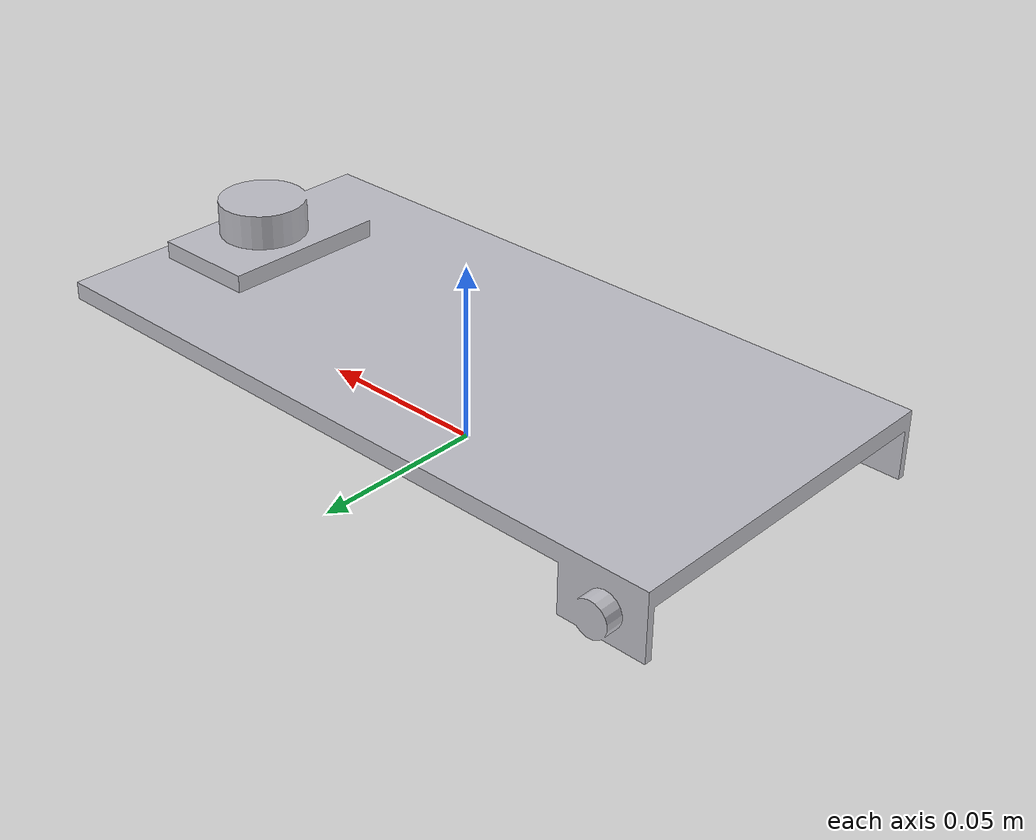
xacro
<?xml version="1.0" ?>
<robot name="AUTODESK" xmlns:xacro="http://www.ros.org/wiki/xacro">

<xacro:include filename="$(find AUTODESK_description)/urdf/materials.xacro" />
<xacro:include filename="$(find AUTODESK_description)/urdf/AUTODESK.trans" />
<xacro:include filename="$(find AUTODESK_description)/urdf/AUTODESK.gazebo" />
<link name="base_link">
  <inertial>
    <origin xyz="0.008250494026902318 -0.00014052632812146858 0.026495828371672355" rpy="0 0 0"/>
    <mass value="0.9341430764694033"/>
    <inertia ixx="0.000726" iyy="0.003429" izz="0.004125" ixy="3e-06" iyz="0.0" ixz="-5e-05"/>
  </inertial>
  <visual>
    <origin xyz="0 0 0" rpy="0 0 0"/>
    <geometry>
      <mesh filename="package://AUTODESK_description/meshes/base_link.stl" scale="0.001 0.001 0.001"/>
    </geometry>
    <material name="silver"/>
  </visual>
  <collision>
    <origin xyz="0 0 0" rpy="0 0 0"/>
    <geometry>
      <mesh filename="package://AUTODESK_description/meshes/base_link.stl" scale="0.001 0.001 0.001"/>
    </geometry>
  </collision>
</link>

</robot>

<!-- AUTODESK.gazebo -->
<robot name="AUTODESK" xmlns:xacro="http://www.ros.org/wiki/xacro" >

<xacro:property name="body_color" value="Gazebo/Silver" />

<gazebo>
  <plugin name="control" filename="libgazebo_ros_control.so"/>
</gazebo>
<gazebo reference="base_link">
  <material>${body_color}</material>
  <mu1>0.2</mu1>
  <mu2>0.2</mu2>
  <selfCollide>true</selfCollide>
  <gravity>true</gravity>
</gazebo>
<gazebo>
  <plugin name="differential_drive_controller" filename="libgazebo_ros_diff_drive.so">

    <!-- Plugin update rate in Hz -->
    <updateRate>${1000}</updateRate>

    <!-- Name of left joint, defaults to `left_joint` -->
    <leftJoint>base_link_left_wheel_joint</leftJoint>

    <!-- Name of right joint, defaults to `right_joint` -->
    <rightJoint>base_link_right_wheel_joint</rightJoint>

    <!-- The distance from the center of one wheel to the other, in meters, defaults to 0.34 m -->
    <wheelSeparation>0.5380</wheelSeparation>

    <!-- Diameter of the wheels, in meters, defaults to 0.15 m -->
    <wheelDiameter>0.2410</wheelDiameter>

    <!-- Wheel acceleration, in rad/s^2, defaults to 0.0 rad/s^2 -->
    <wheelAcceleration>1.0</wheelAcceleration>

    <!-- Maximum torque which the wheels can produce, in Nm, defaults to 5 Nm -->
    <wheelTorque>20</wheelTorque>

    <!-- Topic to receive geometry_msgs/Twist message commands, defaults to `cmd_vel` -->
    <commandTopic>cmd_vel</commandTopic>

    <!-- Topic to publish nav_msgs/Odometry messages, defaults to `odom` -->
    <odometryTopic>odom</odometryTopic>

    <!-- Odometry frame, defaults to `odom` -->
    <odometryFrame>odom</odometryFrame>

    <!-- Robot frame to calculate odometry from, defaults to `base_footprint` -->
    <robotBaseFrame>base_footprint</robotBaseFrame>

    <!-- Odometry source, 0 for ENCODER, 1 for WORLD, defaults to WORLD -->
    <odometrySource>1</odometrySource>

    <!-- Set to true to publish transforms for the wheel links, defaults to false -->
    <publishWheelTF>true</publishWheelTF>

    <!-- Set to true to publish transforms for the odometry, defaults to true -->
    <publishOdom>true</publishOdom>

    <!-- Set to true to publish sensor_msgs/JointState on /joint_states for the wheel joints, defaults to false -->
    <publishWheelJointState>true</publishWheelJointState>

    <!-- Set to true to swap right and left wheels, defaults to true -->
    <legacyMode>false</legacyMode>
  </plugin>
</gazebo>
</robot>
